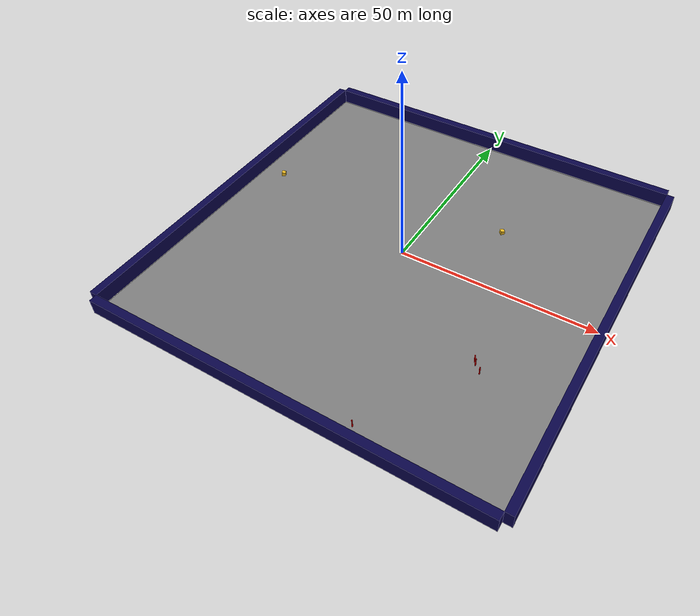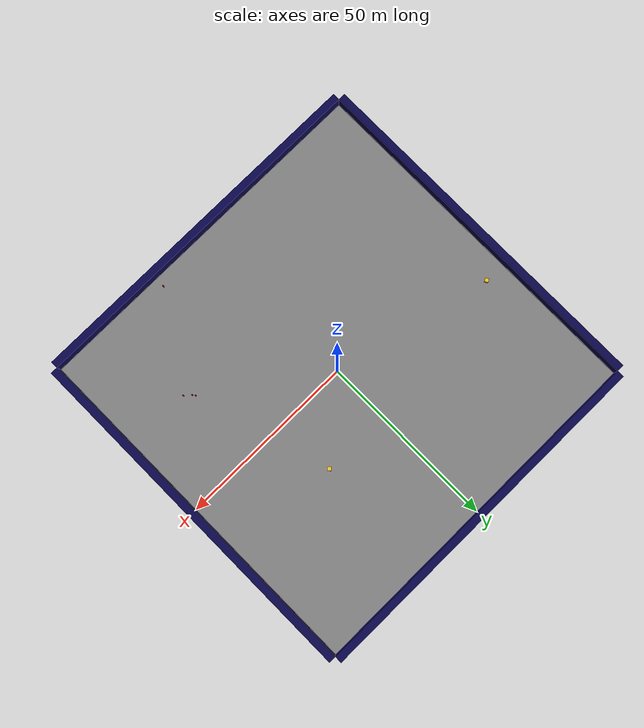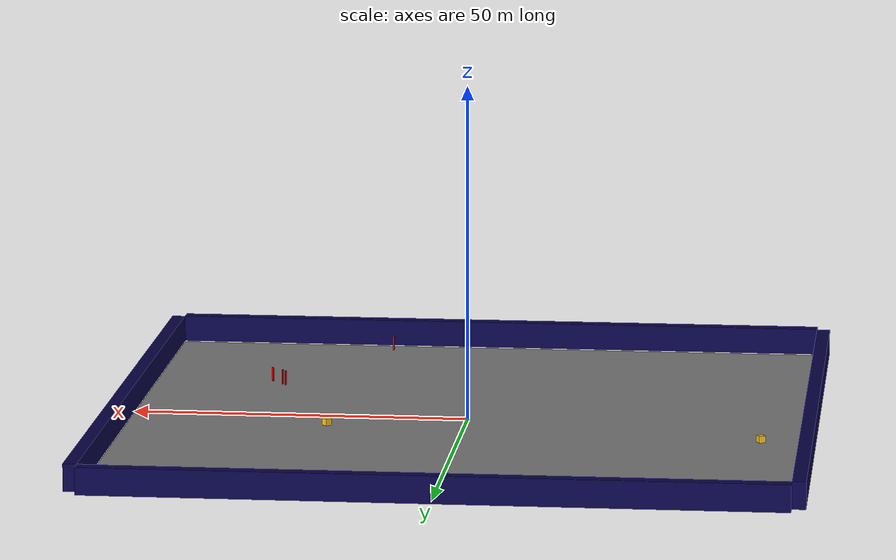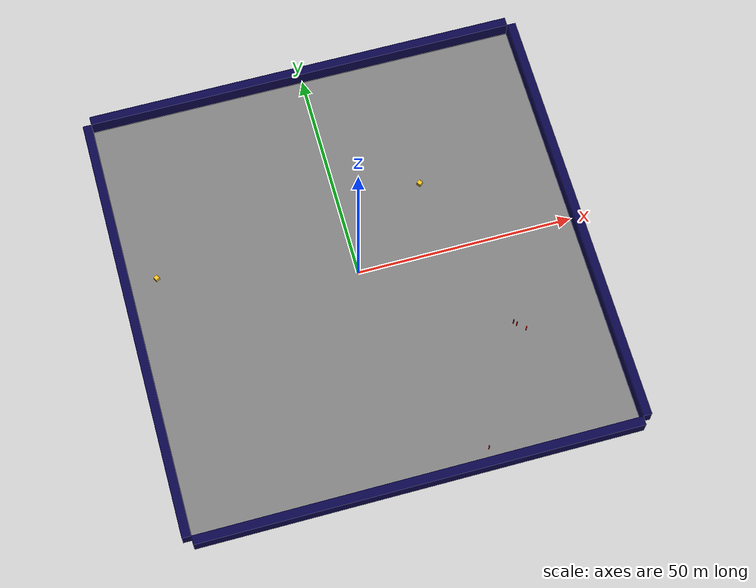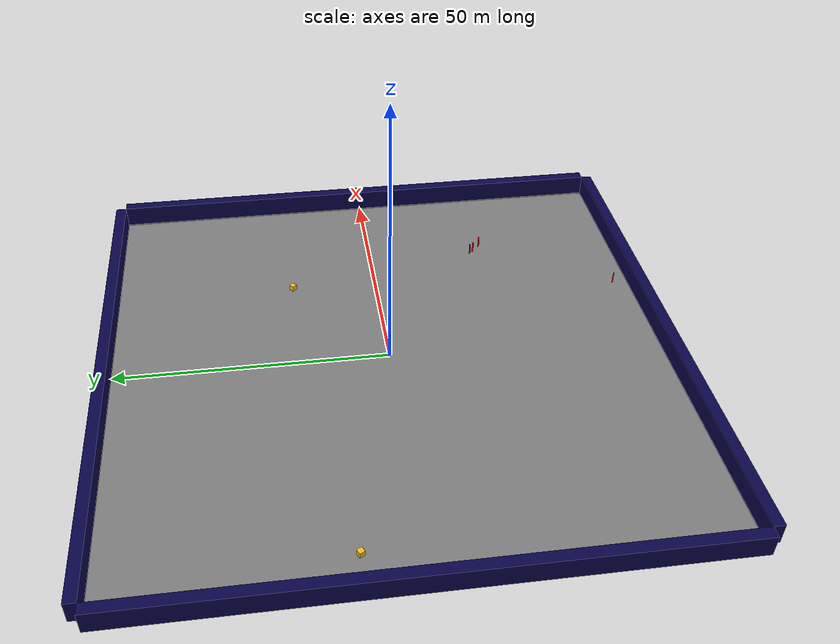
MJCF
<mujoco model="unnamed_model">
  <default>
    <default class="/" />
    <default class="border/" />
    <default class="border_1/" />
    <default class="border_2/" />
    <default class="border_3/" />
    <default class="placeholder/" />
    <default class="agent/" />
    <default class="tree0/" />
    <default class="tree1/" />
    <default class="tree2/" />
    <default class="tree3/" />
  </default>
  <worldbody>
    <body name="border/">
      <body name="border/border" pos="0 51 2">
        <geom name="border/border_geom" class="border/" type="box" size="50 1 2" rgba="0.035000000000000003 0.016 0.28999999999999998 1" />
      </body>
    </body>
    <body name="border_1/">
      <body name="border_1/border" pos="0 -51 2">
        <geom name="border_1/border_geom" class="border_1/" type="box" size="50 1 2" rgba="0.035000000000000003 0.016 0.28999999999999998 1" />
      </body>
    </body>
    <body name="border_2/">
      <body name="border_2/border" pos="51 0 2">
        <geom name="border_2/border_geom" class="border_2/" type="box" size="1 50 2" rgba="0.035000000000000003 0.016 0.28999999999999998 1" />
      </body>
    </body>
    <body name="border_3/">
      <body name="border_3/border" pos="-51 0 2">
        <geom name="border_3/border_geom" class="border_3/" type="box" size="1 50 2" rgba="0.035000000000000003 0.016 0.28999999999999998 1" />
      </body>
    </body>
    <body euler="0 0 -139.27980493027178" name="placeholder/">
      <joint name="placeholder/boxagent_freeJoint/" class="/" type="free" />
      <body name="placeholder/placeholder" pos="-25 0 3" euler="0 0 0">
        <geom name="placeholder/boxagent_geom" class="placeholder/" type="box" size="0.5 0.5 0.5" rgba="0.94899999999999995 0.74509999999999998 0.1333 1" euler="0 0 0" />
      </body>
    </body>
    <body euler="0 0 -62.478348358443441" name="agent/">
      <joint name="agent/boxagent_freeJoint/" class="/" type="free" />
      <body name="agent/agent" pos="-29.452249999999999 -34.228999999999999 0.5" euler="0 0 0">
        <geom name="agent/boxagent_geom" class="agent/" type="box" size="0.5 0.5 0.5" rgba="0.94899999999999995 0.74509999999999998 0.1333 1" euler="0 0 0" />
      </body>
    </body>
    <body name="tree0/">
      <body name="tree0/tree0" pos="32.280299999999997 -23.045999999999999 0.10000000000000001" euler="0 0 54.262523602099719">
        <geom name="tree0/tree_geom" class="tree0/" type="box" size="0.10000000000000001 0.10000000000000001 2" rgba="1 0 0 1" />
      </body>
    </body>
    <body name="tree1/">
      <body name="tree1/tree1" pos="30.57395 -21.4908 0.10000000000000001" euler="0 0 49.913342818185839">
        <geom name="tree1/tree_geom" class="tree1/" type="box" size="0.10000000000000001 0.10000000000000001 2" rgba="1 0 0 1" />
      </body>
    </body>
    <body name="tree2/">
      <body name="tree2/tree2" pos="30.028400000000001 -20.772800000000004 0.10000000000000001" euler="0 0 -133.96269180569357">
        <geom name="tree2/tree_geom" class="tree2/" type="box" size="0.10000000000000001 0.10000000000000001 2" rgba="1 0 0 1" />
      </body>
    </body>
    <body name="tree3/">
      <body name="tree3/tree3" pos="16.4132 -47.107100000000003 0.10000000000000001" euler="0 0 -20.025696529972635">
        <geom name="tree3/tree_geom" class="tree3/" type="box" size="0.10000000000000001 0.10000000000000001 2" rgba="1 0 0 1" />
      </body>
    </body>
    <geom name="base_plane" class="/" type="plane" size="50 50 0.10000000000000001" />
  </worldbody>
</mujoco>
